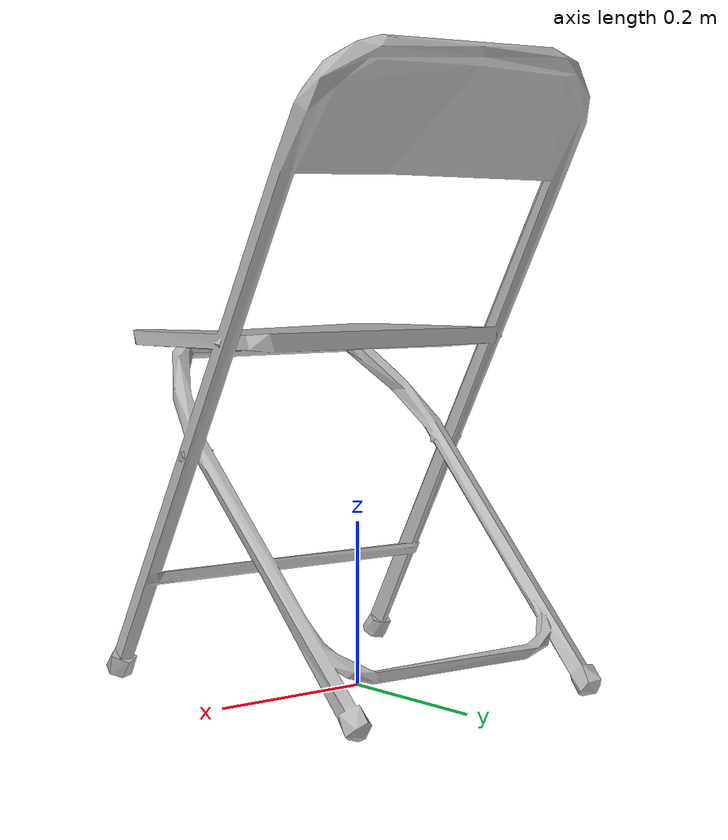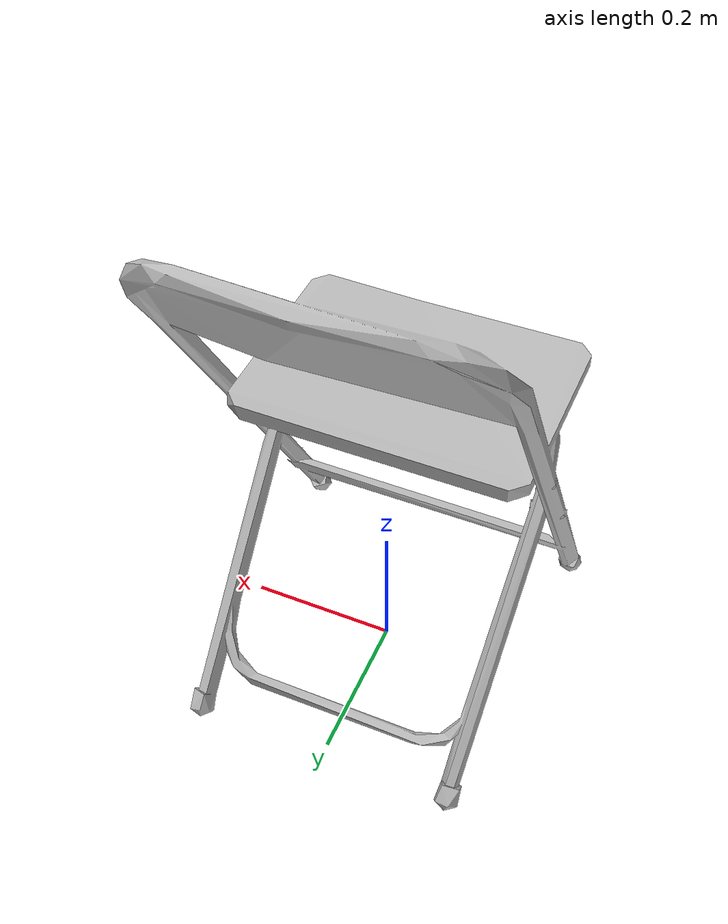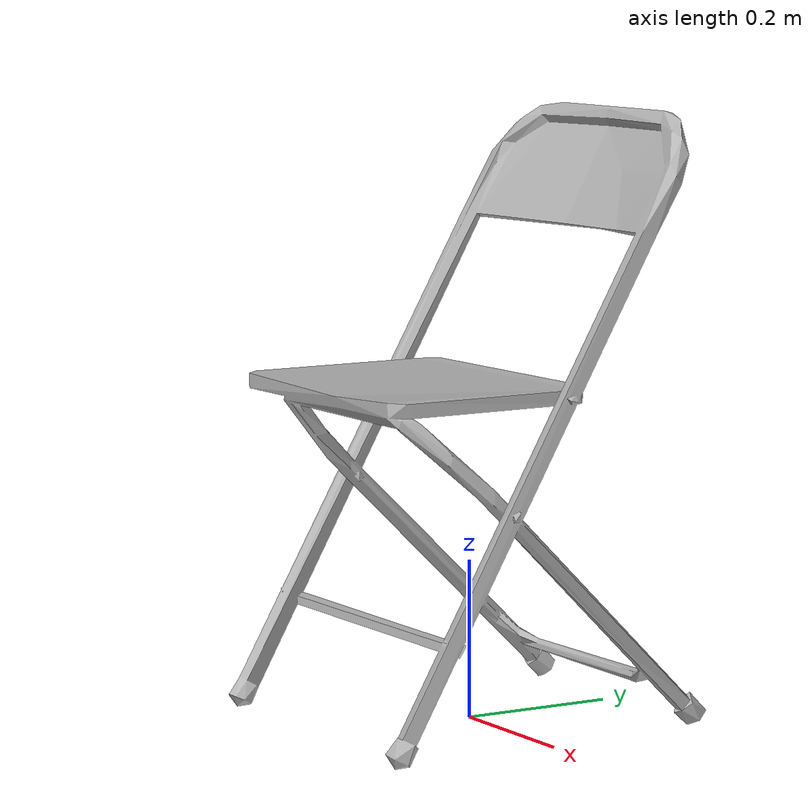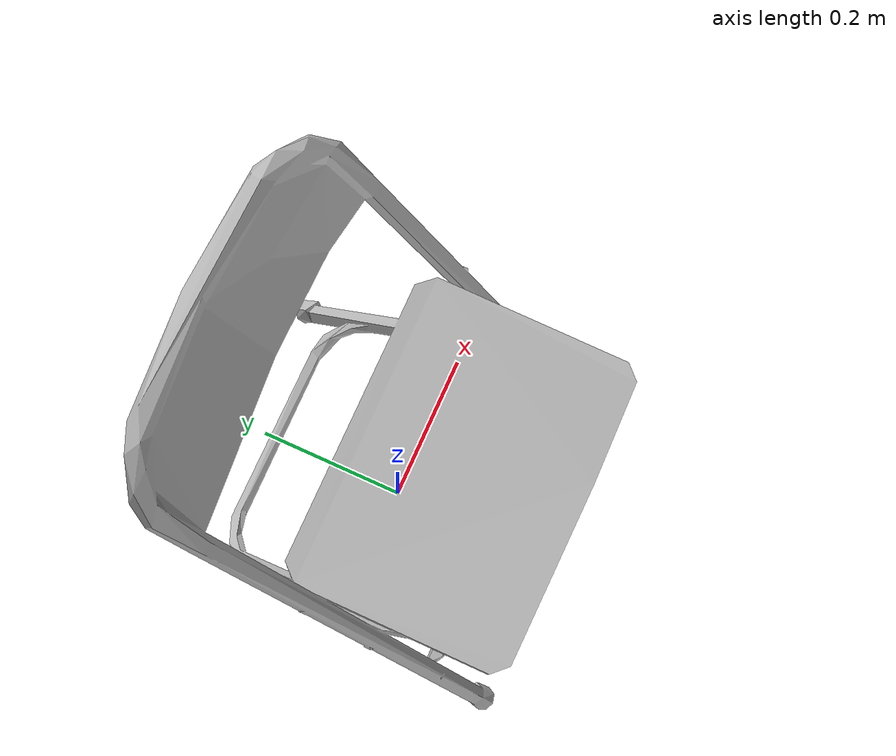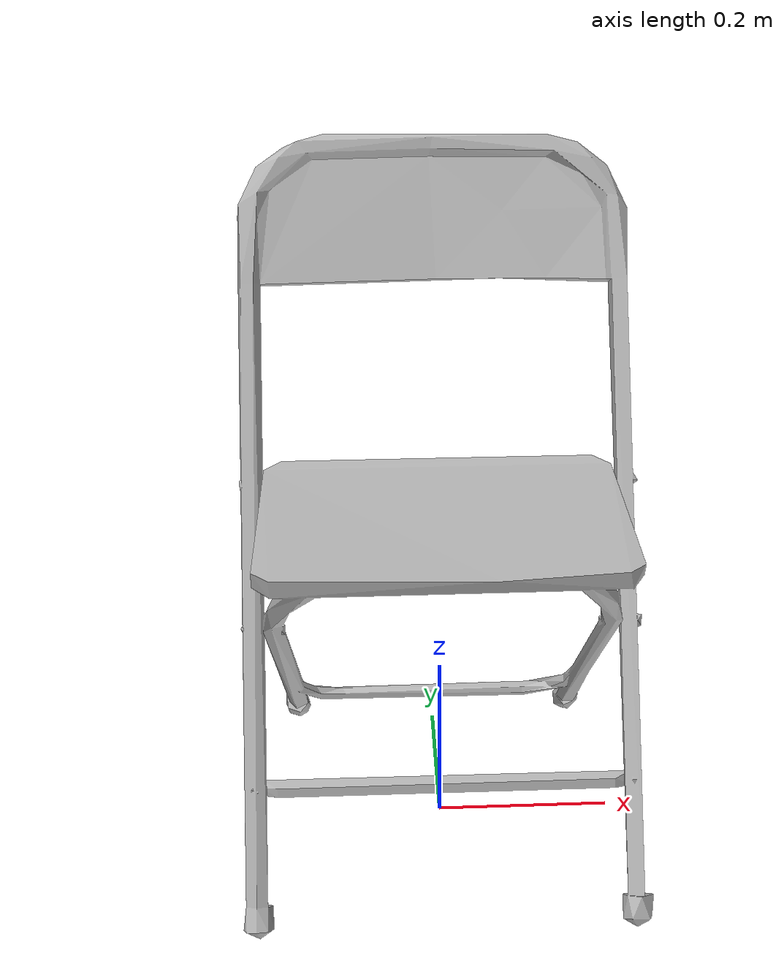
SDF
<?xml version='1.0'?>
<sdf version="1.5">

  <model name="folding_chair">
    <static>false</static>
    <link name="link">

      <inertial>
        <mass>1.0</mass>
        <inertia>
          <ixx>0.05</ixx>       <!-- for a box: ixx = 0.083 * mass * (y*y + z*z) -->
          <ixy>0.0</ixy>       <!-- for a box: ixy = 0 -->
          <ixz>0.0</ixz>       <!-- for a box: ixz = 0 -->
          <iyy>0.05</iyy>       <!-- for a box: iyy = 0.083 * mass * (x*x + z*z) -->
          <iyz>0.0</iyz>       <!-- for a box: iyz = 0 -->
          <izz>0.05</izz>      <!-- for a box: izz = 0.083 * mass * (x*x + y*y) -->
        </inertia>
      </inertial>

      <collision name="collision">
        <geometry>
          <mesh>
            <uri>model://folding_chair/folding_chair.dae</uri>
          </mesh>
        </geometry>
      </collision>

      <visual name="visual">
        <geometry>
          <mesh>
            <uri>model://folding_chair/folding_chair.dae</uri>
          </mesh>
        </geometry>
      </visual>

    </link>
  </model>

</sdf>
